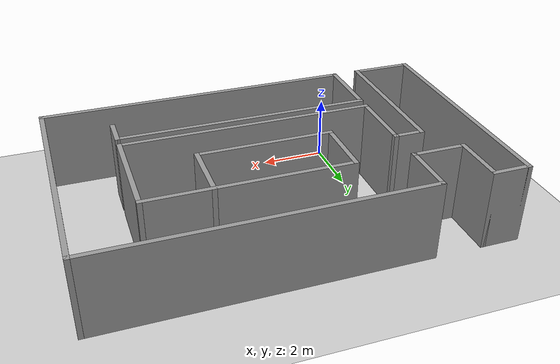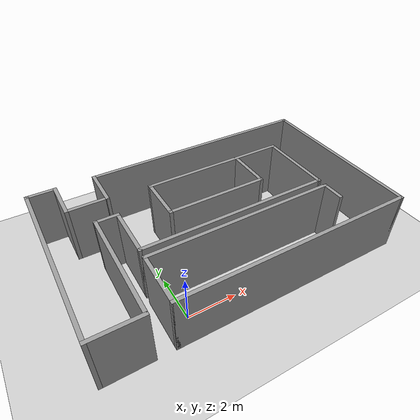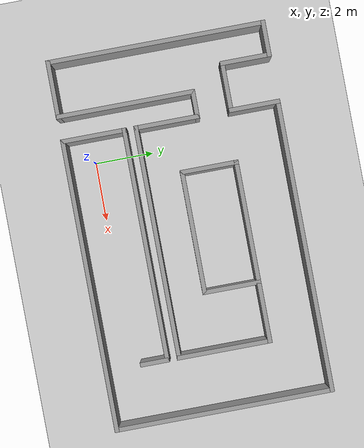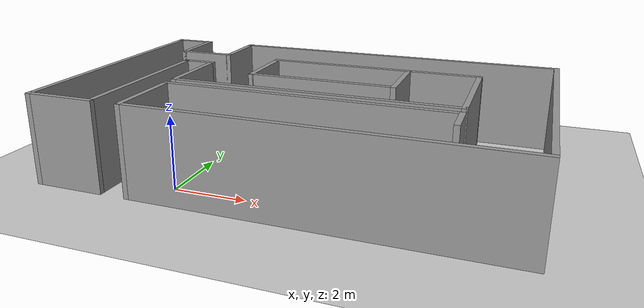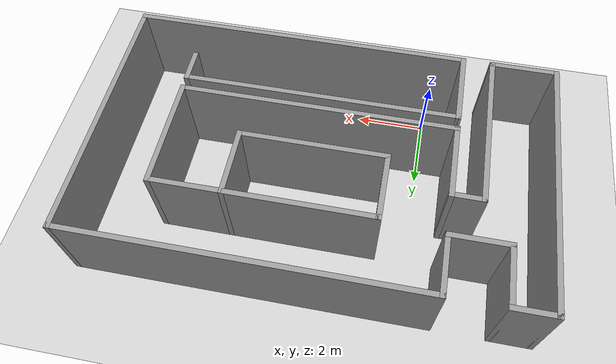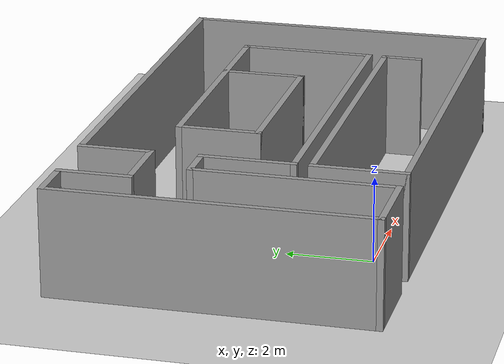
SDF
<sdf version="1.7">
 <world name="default">
  <light name="sun" type="directional">
   <pose>0 0 10 0 -0 0</pose>
   <diffuse>0.8 0.8 0.8 1</diffuse>
   <specular>0.2 0.2 0.2 1</specular>
   <attenuation>
    <range>1000</range>
    <constant>0.9</constant>
    <linear>0.01</linear>
    <quadratic>0.001</quadratic>
   </attenuation>
   <direction>-0.5 0.1 -0.9</direction>
   <spot><inner_angle>0</inner_angle><outer_angle>0</outer_angle><falloff>0</falloff></spot>
  </light>
  <model name="ground_plane">
   <static>1</static>
   <link name="link">
    <collision name="collision">
     <geometry><plane><normal>0 0 1</normal><size>100 100</size></plane></geometry>
     <surface><friction><ode><mu>100</mu><mu2>50</mu2></ode></friction></surface>
    </collision>
    <visual name="visual">
     <cast_shadows>0</cast_shadows>
     <geometry><plane><normal>0 0 1</normal><size>100 100</size></plane></geometry>
     <material>
      <script><uri>file://media/materials/scripts/gazebo.material</uri><name>Gazebo/Grey</name></script>
     </material>
    </visual>
   </link>
  </model>
  <gravity>0 0 -9.8</gravity>
  <magnetic_field>6e-06 2.3e-05 -4.2e-05</magnetic_field>
  <atmosphere type="adiabatic"/>
  <physics type="ode">
   <max_step_size>0.001</max_step_size>
   <real_time_factor>1</real_time_factor>
   <real_time_update_rate>1000</real_time_update_rate>
  </physics>
  <scene><ambient>0.4 0.4 0.4 1</ambient><background>0.7 0.7 0.7 1</background><shadows>1</shadows></scene>
  <audio><device>default</device></audio>
  <spherical_coordinates>
   <surface_model>EARTH_WGS84</surface_model>
   <latitude_deg>0</latitude_deg>
   <longitude_deg>0</longitude_deg>
   <elevation>0</elevation>
   <heading_deg>0</heading_deg>
  </spherical_coordinates>
  <model name="labdefaultmap">
   <pose>2.73361 2.79356 0 0 -0 0</pose>
   <link name="Wall_10">
    <collision name="Wall_10_Collision">
     <geometry><box><size>8 0.15 2.5</size></box></geometry>
     <pose>0 0 1.25 0 -0 0</pose>
    </collision>
    <visual name="Wall_10_Visual">
     <pose>0 0 1.25 0 -0 0</pose>
     <geometry><box><size>8 0.15 2.5</size></box></geometry>
     <material>
      <script><uri>file://media/materials/scripts/gazebo.material</uri><name>Gazebo/Grey</name></script>
      <ambient>1 1 1 1</ambient>
     </material>
     <meta><layer>0</layer></meta>
    </visual>
    <pose>0.35 -1.175 0 0 -0 0</pose>
   </link>
   <link name="Wall_11">
    <collision name="Wall_11_Collision">
     <geometry><box><size>3.25 0.15 2.5</size></box></geometry>
     <pose>0 0 1.25 0 -0 0</pose>
    </collision>
    <visual name="Wall_11_Visual">
     <pose>0 0 1.25 0 -0 0</pose>
     <geometry><box><size>3.25 0.15 2.5</size></box></geometry>
     <material>
      <script><uri>file://media/materials/scripts/gazebo.material</uri><name>Gazebo/Grey</name></script>
      <ambient>1 1 1 1</ambient>
     </material>
     <meta><layer>0</layer></meta>
    </visual>
    <pose>4.275 0.375 0 0 -0 1.5708</pose>
   </link>
   <link name="Wall_12">
    <collision name="Wall_12_Collision">
     <geometry><box><size>6.25 0.15 2.5</size></box></geometry>
     <pose>0 0 1.25 0 -0 0</pose>
    </collision>
    <visual name="Wall_12_Visual">
     <pose>0 0 1.25 0 -0 0</pose>
     <geometry><box><size>6.25 0.15 2.5</size></box></geometry>
     <material>
      <script><uri>file://media/materials/scripts/gazebo.material</uri><name>Gazebo/Grey</name></script>
      <ambient>1 1 1 1</ambient>
     </material>
     <meta><layer>0</layer></meta>
    </visual>
    <pose>1.225 1.925 0 0 -0 3.14159</pose>
   </link>
   <link name="Wall_13">
    <collision name="Wall_13_Collision">
     <geometry><box><size>2 0.15 2.5</size></box></geometry>
     <pose>0 0 1.25 0 -0 0</pose>
    </collision>
    <visual name="Wall_13_Visual">
     <pose>0 0 1.25 0 -0 0</pose>
     <geometry><box><size>2 0.15 2.5</size></box></geometry>
     <material>
      <script><uri>file://media/materials/scripts/gazebo.material</uri><name>Gazebo/Grey</name></script>
      <ambient>1 1 1 1</ambient>
     </material>
     <meta><layer>0</layer></meta>
    </visual>
    <pose>-1.825 1 0 0 -0 -1.5708</pose>
   </link>
   <link name="Wall_14">
    <collision name="Wall_14_Collision">
     <geometry><box><size>4.25 0.15 2.5</size></box></geometry>
     <pose>0 0 1.25 0 -0 0</pose>
    </collision>
    <visual name="Wall_14_Visual">
     <pose>0 0 1.25 0 -0 0</pose>
     <geometry><box><size>4.25 0.15 2.5</size></box></geometry>
     <material>
      <script><uri>file://media/materials/scripts/gazebo.material</uri><name>Gazebo/Grey</name></script>
      <ambient>1 1 1 1</ambient>
     </material>
     <meta><layer>0</layer></meta>
    </visual>
    <pose>0.225 0.075 0 0 -0 0</pose>
   </link>
   <link name="Wall_15">
    <collision name="Wall_15_Collision">
     <geometry><box><size>2 0.15 2.5</size></box></geometry>
     <pose>0 0 1.25 0 -0 0</pose>
    </collision>
    <visual name="Wall_15_Visual">
     <pose>0 0 1.25 0 -0 0</pose>
     <geometry><box><size>2 0.15 2.5</size></box></geometry>
     <material>
      <script><uri>file://media/materials/scripts/gazebo.material</uri><name>Gazebo/Grey</name></script>
      <ambient>1 1 1 1</ambient>
     </material>
     <meta><layer>0</layer></meta>
    </visual>
    <pose>2.275 1 0 0 -0 1.5708</pose>
   </link>
   <link name="Wall_18">
    <collision name="Wall_18_Collision">
     <geometry><box><size>2.25 0.15 2.5</size></box></geometry>
     <pose>0 0 1.25 0 -0 0</pose>
    </collision>
    <visual name="Wall_18_Visual">
     <pose>0 0 1.25 0 -0 0</pose>
     <geometry><box><size>2.25 0.15 2.5</size></box></geometry>
     <material>
      <script><uri>file://media/materials/scripts/gazebo.material</uri><name>Gazebo/Grey</name></script>
      <ambient>1 1 1 1</ambient>
     </material>
     <meta><layer>0</layer></meta>
    </visual>
    <pose>-3.575 -2.625 0 0 -0 1.5708</pose>
   </link>
   <link name="Wall_19">
    <collision name="Wall_19_Collision">
     <geometry><box><size>8 0.15 2.5</size></box></geometry>
     <pose>0 0 1.25 0 -0 0</pose>
    </collision>
    <visual name="Wall_19_Visual">
     <pose>0 0 1.25 0 -0 0</pose>
     <geometry><box><size>8 0.15 2.5</size></box></geometry>
     <material>
      <script><uri>file://media/materials/scripts/gazebo.material</uri><name>Gazebo/Grey</name></script>
      <ambient>1 1 1 1</ambient>
     </material>
     <meta><layer>0</layer></meta>
    </visual>
    <pose>0.35 -1.575 0 0 -0 0</pose>
   </link>
   <link name="Wall_20">
    <collision name="Wall_20_Collision">
     <geometry><box><size>1 0.15 2.5</size></box></geometry>
     <pose>0 0 1.25 0 -0 0</pose>
    </collision>
    <visual name="Wall_20_Visual">
     <pose>0 0 1.25 0 -0 0</pose>
     <geometry><box><size>1 0.15 2.5</size></box></geometry>
     <material>
      <script><uri>file://media/materials/scripts/gazebo.material</uri><name>Gazebo/Grey</name></script>
      <ambient>1 1 1 1</ambient>
     </material>
     <meta><layer>0</layer></meta>
    </visual>
    <pose>4.275 -2 0 0 -0 -1.5708</pose>
   </link>
   <link name="Wall_22">
    <collision name="Wall_22_Collision">
     <geometry><box><size>10 0.15 2.5</size></box></geometry>
     <pose>0 0 1.25 0 -0 0</pose>
    </collision>
    <visual name="Wall_22_Visual">
     <pose>0 0 1.25 0 -0 0</pose>
     <geometry><box><size>10 0.15 2.5</size></box></geometry>
     <material>
      <script><uri>file://media/materials/scripts/gazebo.material</uri><name>Gazebo/Grey</name></script>
      <ambient>1 1 1 1</ambient>
     </material>
     <meta><layer>0</layer></meta>
    </visual>
    <pose>1.35 -3.675 0 0 -0 0</pose>
   </link>
   <link name="Wall_24">
    <collision name="Wall_24_Collision">
     <geometry><box><size>2.25 0.15 2.5</size></box></geometry>
     <pose>0 0 1.25 0 -0 0</pose>
    </collision>
    <visual name="Wall_24_Visual">
     <pose>0 0 1.25 0 -0 0</pose>
     <geometry><box><size>2.25 0.15 2.5</size></box></geometry>
     <material>
      <script><uri>file://media/materials/scripts/gazebo.material</uri><name>Gazebo/Grey</name></script>
      <ambient>1 1 1 1</ambient>
     </material>
     <meta><layer>0</layer></meta>
    </visual>
    <pose>-3.575 -0.125 0 0 -0 1.5708</pose>
   </link>
   <link name="Wall_25">
    <collision name="Wall_25_Collision">
     <geometry><box><size>1 0.15 2.5</size></box></geometry>
     <pose>0 0 1.25 0 -0 0</pose>
    </collision>
    <visual name="Wall_25_Visual">
     <pose>0 0 1.25 0 -0 0</pose>
     <geometry><box><size>1 0.15 2.5</size></box></geometry>
     <material>
      <script><uri>file://media/materials/scripts/gazebo.material</uri><name>Gazebo/Grey</name></script>
      <ambient>1 1 1 1</ambient>
     </material>
     <meta><layer>0</layer></meta>
    </visual>
    <pose>-4 0.925 0 0 -0 3.14159</pose>
   </link>
   <link name="Wall_26">
    <collision name="Wall_26_Collision">
     <geometry><box><size>4.75 0.15 2.5</size></box></geometry>
     <pose>0 0 1.25 0 -0 0</pose>
    </collision>
    <visual name="Wall_26_Visual">
     <pose>0 0 1.25 0 -0 0</pose>
     <geometry><box><size>4.75 0.15 2.5</size></box></geometry>
     <material>
      <script><uri>file://media/materials/scripts/gazebo.material</uri><name>Gazebo/Grey</name></script>
      <ambient>1 1 1 1</ambient>
     </material>
     <meta><layer>0</layer></meta>
    </visual>
    <pose>-4.425 -1.375 0 0 -0 -1.5708</pose>
   </link>
   <link name="Wall_27">
    <collision name="Wall_27_Collision">
     <geometry><box><size>2 0.15 2.5</size></box></geometry>
     <pose>0 0 1.25 0 -0 0</pose>
    </collision>
    <visual name="Wall_27_Visual">
     <pose>0 0 1.25 0 -0 0</pose>
     <geometry><box><size>2 0.15 2.5</size></box></geometry>
     <material>
      <script><uri>file://media/materials/scripts/gazebo.material</uri><name>Gazebo/Grey</name></script>
      <ambient>1 1 1 1</ambient>
     </material>
     <meta><layer>0</layer></meta>
    </visual>
    <pose>-5.35 -3.675 0 0 -0 3.14159</pose>
   </link>
   <link name="Wall_28">
    <collision name="Wall_28_Collision">
     <geometry><box><size>7.5 0.15 2.5</size></box></geometry>
     <pose>0 0 1.25 0 -0 0</pose>
    </collision>
    <visual name="Wall_28_Visual">
     <pose>0 0 1.25 0 -0 0</pose>
     <geometry><box><size>7.5 0.15 2.5</size></box></geometry>
     <material>
      <script><uri>file://media/materials/scripts/gazebo.material</uri><name>Gazebo/Grey</name></script>
      <ambient>1 1 1 1</ambient>
     </material>
     <meta><layer>0</layer></meta>
    </visual>
    <pose>-6.275 -0 0 0 -0 1.5708</pose>
   </link>
   <link name="Wall_31">
    <collision name="Wall_31_Collision">
     <geometry><box><size>1.25 0.15 2.5</size></box></geometry>
     <pose>0 0 1.25 0 -0 0</pose>
    </collision>
    <visual name="Wall_31_Visual">
     <pose>0 0 1.25 0 -0 0</pose>
     <geometry><box><size>1.25 0.15 2.5</size></box></geometry>
     <material>
      <script><uri>file://media/materials/scripts/gazebo.material</uri><name>Gazebo/Grey</name></script>
      <ambient>1 1 1 1</ambient>
     </material>
     <meta><layer>0</layer></meta>
    </visual>
    <pose>-5.725 3.675 0 0 -0 0</pose>
   </link>
   <link name="Wall_32">
    <collision name="Wall_32_Collision">
     <geometry><box><size>1.75 0.15 2.5</size></box></geometry>
     <pose>0 0 1.25 0 -0 0</pose>
    </collision>
    <visual name="Wall_32_Visual">
     <pose>0 0 1.25 0 -0 0</pose>
     <geometry><box><size>1.75 0.15 2.5</size></box></geometry>
     <material>
      <script><uri>file://media/materials/scripts/gazebo.material</uri><name>Gazebo/Grey</name></script>
      <ambient>1 1 1 1</ambient>
     </material>
     <meta><layer>0</layer></meta>
    </visual>
    <pose>-5.175 2.875 0 0 -0 -1.5708</pose>
   </link>
   <link name="Wall_33">
    <collision name="Wall_33_Collision">
     <geometry><box><size>1.75 0.15 2.5</size></box></geometry>
     <pose>0 0 1.25 0 -0 0</pose>
    </collision>
    <visual name="Wall_33_Visual">
     <pose>0 0 1.25 0 -0 0</pose>
     <geometry><box><size>1.75 0.15 2.5</size></box></geometry>
     <material>
      <script><uri>file://media/materials/scripts/gazebo.material</uri><name>Gazebo/Grey</name></script>
      <ambient>1 1 1 1</ambient>
     </material>
     <meta><layer>0</layer></meta>
    </visual>
    <pose>-4.375 2.075 0 0 -0 0</pose>
   </link>
   <link name="Wall_34">
    <collision name="Wall_34_Collision">
     <geometry><box><size>1.75 0.15 2.5</size></box></geometry>
     <pose>0 0 1.25 0 -0 0</pose>
    </collision>
    <visual name="Wall_34_Visual">
     <pose>0 0 1.25 0 -0 0</pose>
     <geometry><box><size>1.75 0.15 2.5</size></box></geometry>
     <material>
      <script><uri>file://media/materials/scripts/gazebo.material</uri><name>Gazebo/Grey</name></script>
      <ambient>1 1 1 1</ambient>
     </material>
     <meta><layer>0</layer></meta>
    </visual>
    <pose>-3.575 2.875 0 0 -0 1.5708</pose>
   </link>
   <link name="Wall_4">
    <collision name="Wall_4_Collision">
     <geometry><box><size>7.5 0.15 2.5</size></box></geometry>
     <pose>0 0 1.25 0 -0 0</pose>
    </collision>
    <visual name="Wall_4_Visual">
     <pose>0 0 1.25 0 -0 0</pose>
     <geometry><box><size>7.5 0.15 2.5</size></box></geometry>
     <material>
      <script><uri>file://media/materials/scripts/gazebo.material</uri><name>Gazebo/Grey</name></script>
      <ambient>1 1 1 1</ambient>
     </material>
     <meta><layer>0</layer></meta>
    </visual>
    <pose>6.275 -0 0 0 -0 1.5708</pose>
   </link>
   <link name="Wall_5">
    <collision name="Wall_5_Collision">
     <geometry><box><size>10 0.15 2.5</size></box></geometry>
     <pose>0 0 1.25 0 -0 0</pose>
    </collision>
    <visual name="Wall_5_Visual">
     <pose>0 0 1.25 0 -0 0</pose>
     <geometry><box><size>10 0.15 2.5</size></box></geometry>
     <material>
      <script><uri>file://media/materials/scripts/gazebo.material</uri><name>Gazebo/Grey</name></script>
      <ambient>1 1 1 1</ambient>
     </material>
     <meta><layer>0</layer></meta>
    </visual>
    <pose>1.35 3.675 0 0 -0 3.14159</pose>
   </link>
   <static>1</static>
  </model>
 </world>
</sdf>
